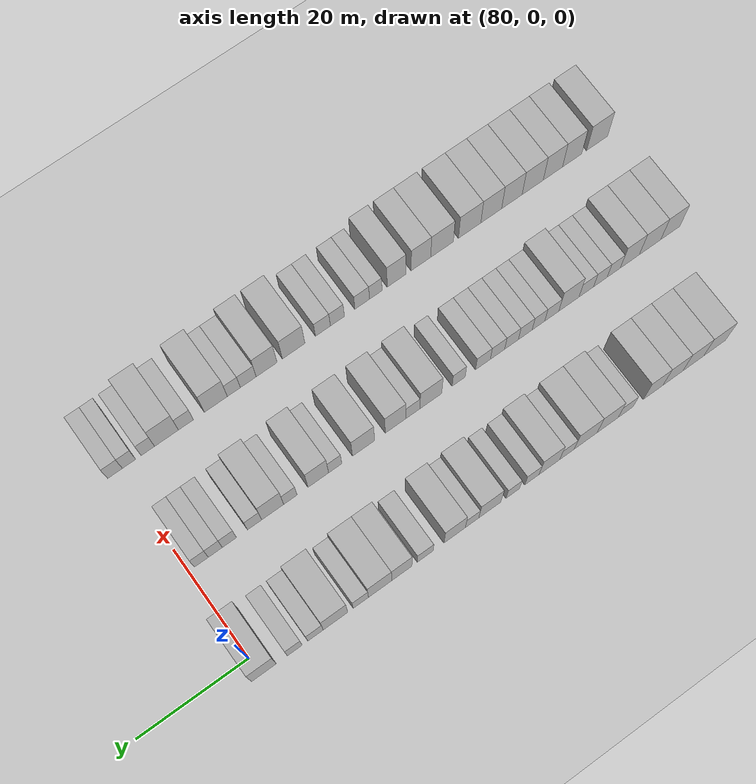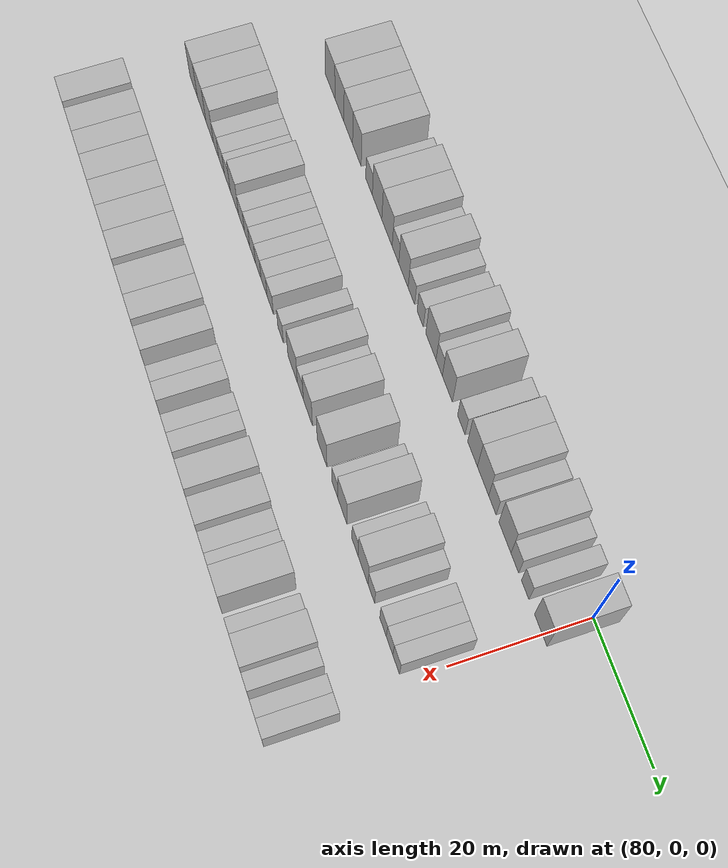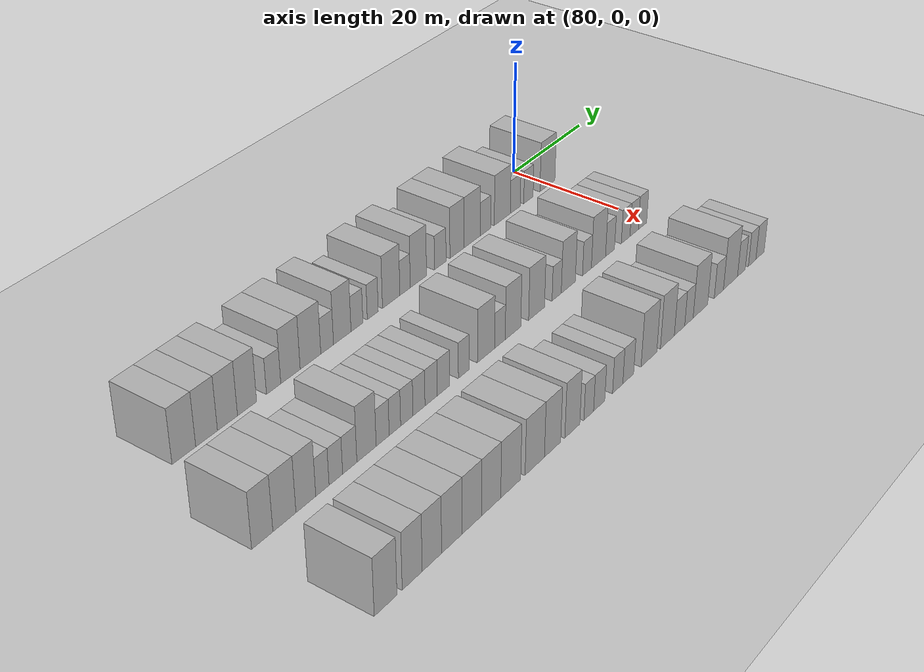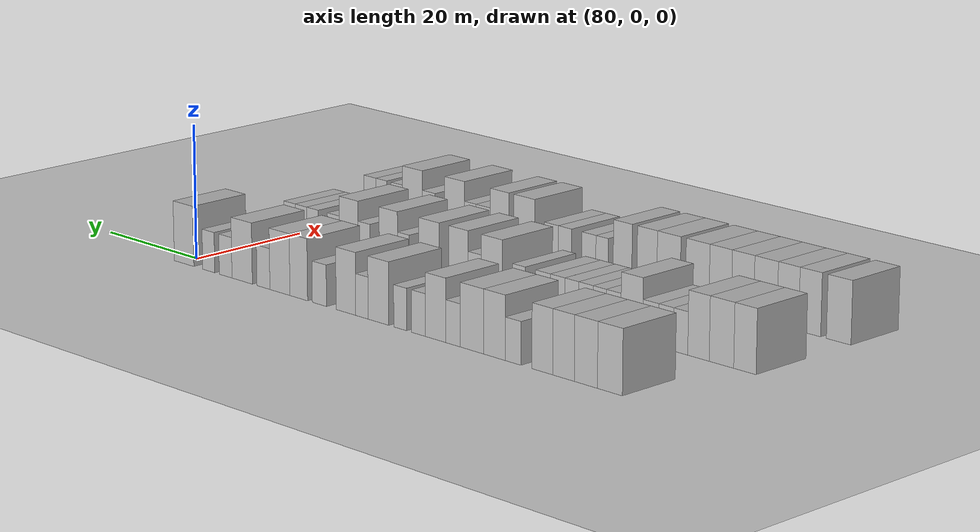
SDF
<sdf version="1.6">
 <world name="default">
  <include>
   <name>ground_plane_2</name>
   <uri>model://HANNAS_ground_plane</uri>
   <pose>100 0 0  0 0 0</pose>
  </include>
  <model name="building_573">
   <static>1</static>
   <pose>82.0000 -85.7794 0 0.000000 0.000000 0.000000</pose>
   <link name="link">
    <pose>0 0 4.50 0 0 0</pose>
    <collision name="collision"><geometry><box><size>10.0000 4.4126 9.0000</size></box></geometry></collision>
    <visual name="visual">
     <cast_shadows>0</cast_shadows>
     <geometry><box><size>10.0000 4.4126 9.0000</size></box></geometry>
     <material>
      <script>
       <uri>model://HANNAS_wall/materials/scripts</uri>
       <uri>model://HANNAS_wall/materials/textures</uri>
       <name>vrc/HANNAS_wall</name>
      </script>
     </material>
    </visual>
   </link>
  </model>
  <model name="building_574">
   <static>1</static>
   <pose>82.0000 -81.5065 0 0.000000 0.000000 0.000000</pose>
   <link name="link">
    <pose>0 0 4.50 0 0 0</pose>
    <collision name="collision"><geometry><box><size>10.0000 4.1332 9.0000</size></box></geometry></collision>
    <visual name="visual">
     <cast_shadows>0</cast_shadows>
     <geometry><box><size>10.0000 4.1332 9.0000</size></box></geometry>
     <material>
      <script>
       <uri>model://HANNAS_wall/materials/scripts</uri>
       <uri>model://HANNAS_wall/materials/textures</uri>
       <name>vrc/HANNAS_wall</name>
      </script>
     </material>
    </visual>
   </link>
  </model>
  <model name="building_575">
   <static>1</static>
   <pose>82.0000 -77.4836 0 0.000000 0.000000 0.000000</pose>
   <link name="link">
    <pose>0 0 4.50 0 0 0</pose>
    <collision name="collision"><geometry><box><size>10.0000 3.9126 9.0000</size></box></geometry></collision>
    <visual name="visual">
     <cast_shadows>0</cast_shadows>
     <geometry><box><size>10.0000 3.9126 9.0000</size></box></geometry>
     <material>
      <script>
       <uri>model://HANNAS_wall/materials/scripts</uri>
       <uri>model://HANNAS_wall/materials/textures</uri>
       <name>vrc/HANNAS_wall</name>
      </script>
     </material>
    </visual>
   </link>
  </model>
  <model name="building_576">
   <static>1</static>
   <pose>82.0000 -73.6182 0 0.000000 0.000000 0.000000</pose>
   <link name="link">
    <pose>0 0 4.50 0 0 0</pose>
    <collision name="collision"><geometry><box><size>10.0000 3.8182 9.0000</size></box></geometry></collision>
    <visual name="visual">
     <cast_shadows>0</cast_shadows>
     <geometry><box><size>10.0000 3.8182 9.0000</size></box></geometry>
     <material>
      <script>
       <uri>model://HANNAS_wall/materials/scripts</uri>
       <uri>model://HANNAS_wall/materials/textures</uri>
       <name>vrc/HANNAS_wall</name>
      </script>
     </material>
    </visual>
   </link>
  </model>
  <model name="building_577">
   <static>1</static>
   <pose>82.0000 -68.2338 0 0.000000 0.000000 0.000000</pose>
   <link name="link">
    <pose>0 0 3.00 0 0 0</pose>
    <collision name="collision"><geometry><box><size>10.0000 2.9505 6.0000</size></box></geometry></collision>
    <visual name="visual">
     <cast_shadows>0</cast_shadows>
     <geometry><box><size>10.0000 2.9505 6.0000</size></box></geometry>
     <material>
      <script>
       <uri>model://HANNAS_wall/materials/scripts</uri>
       <uri>model://HANNAS_wall/materials/textures</uri>
       <name>vrc/HANNAS_wall</name>
      </script>
     </material>
    </visual>
   </link>
  </model>
  <model name="building_578">
   <static>1</static>
   <pose>82.0000 -64.7170 0 0.000000 0.000000 0.000000</pose>
   <link name="link">
    <pose>0 0 4.50 0 0 0</pose>
    <collision name="collision"><geometry><box><size>10.0000 4.0831 9.0000</size></box></geometry></collision>
    <visual name="visual">
     <cast_shadows>0</cast_shadows>
     <geometry><box><size>10.0000 4.0831 9.0000</size></box></geometry>
     <material>
      <script>
       <uri>model://HANNAS_wall/materials/scripts</uri>
       <uri>model://HANNAS_wall/materials/textures</uri>
       <name>vrc/HANNAS_wall</name>
      </script>
     </material>
    </visual>
   </link>
  </model>
  <model name="building_579">
   <static>1</static>
   <pose>82.0000 -60.4517 0 0.000000 0.000000 0.000000</pose>
   <link name="link">
    <pose>0 0 4.50 0 0 0</pose>
    <collision name="collision"><geometry><box><size>10.0000 4.4473 9.0000</size></box></geometry></collision>
    <visual name="visual">
     <cast_shadows>0</cast_shadows>
     <geometry><box><size>10.0000 4.4473 9.0000</size></box></geometry>
     <material>
      <script>
       <uri>model://HANNAS_wall/materials/scripts</uri>
       <uri>model://HANNAS_wall/materials/textures</uri>
       <name>vrc/HANNAS_wall</name>
      </script>
     </material>
    </visual>
   </link>
  </model>
  <model name="building_580">
   <static>1</static>
   <pose>82.0000 -56.8264 0 0.000000 0.000000 0.000000</pose>
   <link name="link">
    <pose>0 0 3.00 0 0 0</pose>
    <collision name="collision"><geometry><box><size>10.0000 2.8032 6.0000</size></box></geometry></collision>
    <visual name="visual">
     <cast_shadows>0</cast_shadows>
     <geometry><box><size>10.0000 2.8032 6.0000</size></box></geometry>
     <material>
      <script>
       <uri>model://HANNAS_wall/materials/scripts</uri>
       <uri>model://HANNAS_wall/materials/textures</uri>
       <name>vrc/HANNAS_wall</name>
      </script>
     </material>
    </visual>
   </link>
  </model>
  <model name="building_581">
   <static>1</static>
   <pose>82.0000 -53.4626 0 0.000000 0.000000 0.000000</pose>
   <link name="link">
    <pose>0 0 4.50 0 0 0</pose>
    <collision name="collision"><geometry><box><size>10.0000 3.9244 9.0000</size></box></geometry></collision>
    <visual name="visual">
     <cast_shadows>0</cast_shadows>
     <geometry><box><size>10.0000 3.9244 9.0000</size></box></geometry>
     <material>
      <script>
       <uri>model://HANNAS_wall/materials/scripts</uri>
       <uri>model://HANNAS_wall/materials/textures</uri>
       <name>vrc/HANNAS_wall</name>
      </script>
     </material>
    </visual>
   </link>
  </model>
  <model name="building_582">
   <static>1</static>
   <pose>82.0000 -50.1414 0 0.000000 0.000000 0.000000</pose>
   <link name="link">
    <pose>0 0 3.00 0 0 0</pose>
    <collision name="collision"><geometry><box><size>10.0000 2.7180 6.0000</size></box></geometry></collision>
    <visual name="visual">
     <cast_shadows>0</cast_shadows>
     <geometry><box><size>10.0000 2.7180 6.0000</size></box></geometry>
     <material>
      <script>
       <uri>model://HANNAS_wall/materials/scripts</uri>
       <uri>model://HANNAS_wall/materials/textures</uri>
       <name>vrc/HANNAS_wall</name>
      </script>
     </material>
    </visual>
   </link>
  </model>
  <model name="building_583">
   <static>1</static>
   <pose>82.0000 -46.5057 0 0.000000 0.000000 0.000000</pose>
   <link name="link">
    <pose>0 0 3.00 0 0 0</pose>
    <collision name="collision"><geometry><box><size>10.0000 2.5535 6.0000</size></box></geometry></collision>
    <visual name="visual">
     <cast_shadows>0</cast_shadows>
     <geometry><box><size>10.0000 2.5535 6.0000</size></box></geometry>
     <material>
      <script>
       <uri>model://HANNAS_wall/materials/scripts</uri>
       <uri>model://HANNAS_wall/materials/textures</uri>
       <name>vrc/HANNAS_wall</name>
      </script>
     </material>
    </visual>
   </link>
  </model>
  <model name="building_584">
   <static>1</static>
   <pose>82.0000 -42.1496 0 0.000000 0.000000 0.000000</pose>
   <link name="link">
    <pose>0 0 4.50 0 0 0</pose>
    <collision name="collision"><geometry><box><size>10.0000 4.1587 9.0000</size></box></geometry></collision>
    <visual name="visual">
     <cast_shadows>0</cast_shadows>
     <geometry><box><size>10.0000 4.1587 9.0000</size></box></geometry>
     <material>
      <script>
       <uri>model://HANNAS_wall/materials/scripts</uri>
       <uri>model://HANNAS_wall/materials/textures</uri>
       <name>vrc/HANNAS_wall</name>
      </script>
     </material>
    </visual>
   </link>
  </model>
  <model name="building_585">
   <static>1</static>
   <pose>82.0000 -38.8081 0 0.000000 0.000000 0.000000</pose>
   <link name="link">
    <pose>0 0 3.00 0 0 0</pose>
    <collision name="collision"><geometry><box><size>10.0000 2.5241 6.0000</size></box></geometry></collision>
    <visual name="visual">
     <cast_shadows>0</cast_shadows>
     <geometry><box><size>10.0000 2.5241 6.0000</size></box></geometry>
     <material>
      <script>
       <uri>model://HANNAS_wall/materials/scripts</uri>
       <uri>model://HANNAS_wall/materials/textures</uri>
       <name>vrc/HANNAS_wall</name>
      </script>
     </material>
    </visual>
   </link>
  </model>
  <model name="building_586">
   <static>1</static>
   <pose>82.0000 -35.5437 0 0.000000 0.000000 0.000000</pose>
   <link name="link">
    <pose>0 0 4.50 0 0 0</pose>
    <collision name="collision"><geometry><box><size>10.0000 4.0047 9.0000</size></box></geometry></collision>
    <visual name="visual">
     <cast_shadows>0</cast_shadows>
     <geometry><box><size>10.0000 4.0047 9.0000</size></box></geometry>
     <material>
      <script>
       <uri>model://HANNAS_wall/materials/scripts</uri>
       <uri>model://HANNAS_wall/materials/textures</uri>
       <name>vrc/HANNAS_wall</name>
      </script>
     </material>
    </visual>
   </link>
  </model>
  <model name="building_587">
   <static>1</static>
   <pose>82.0000 -30.0654 0 0.000000 0.000000 0.000000</pose>
   <link name="link">
    <pose>0 0 3.00 0 0 0</pose>
    <collision name="collision"><geometry><box><size>10.0000 2.9519 6.0000</size></box></geometry></collision>
    <visual name="visual">
     <cast_shadows>0</cast_shadows>
     <geometry><box><size>10.0000 2.9519 6.0000</size></box></geometry>
     <material>
      <script>
       <uri>model://HANNAS_wall/materials/scripts</uri>
       <uri>model://HANNAS_wall/materials/textures</uri>
       <name>vrc/HANNAS_wall</name>
      </script>
     </material>
    </visual>
   </link>
  </model>
  <model name="building_588">
   <static>1</static>
   <pose>82.0000 -25.7265 0 0.000000 0.000000 0.000000</pose>
   <link name="link">
    <pose>0 0 4.50 0 0 0</pose>
    <collision name="collision"><geometry><box><size>10.0000 3.7259 9.0000</size></box></geometry></collision>
    <visual name="visual">
     <cast_shadows>0</cast_shadows>
     <geometry><box><size>10.0000 3.7259 9.0000</size></box></geometry>
     <material>
      <script>
       <uri>model://HANNAS_wall/materials/scripts</uri>
       <uri>model://HANNAS_wall/materials/textures</uri>
       <name>vrc/HANNAS_wall</name>
      </script>
     </material>
    </visual>
   </link>
  </model>
  <model name="building_589">
   <static>1</static>
   <pose>82.0000 -21.7250 0 0.000000 0.000000 0.000000</pose>
   <link name="link">
    <pose>0 0 4.50 0 0 0</pose>
    <collision name="collision"><geometry><box><size>10.0000 4.2771 9.0000</size></box></geometry></collision>
    <visual name="visual">
     <cast_shadows>0</cast_shadows>
     <geometry><box><size>10.0000 4.2771 9.0000</size></box></geometry>
     <material>
      <script>
       <uri>model://HANNAS_wall/materials/scripts</uri>
       <uri>model://HANNAS_wall/materials/textures</uri>
       <name>vrc/HANNAS_wall</name>
      </script>
     </material>
    </visual>
   </link>
  </model>
  <model name="building_590">
   <static>1</static>
   <pose>82.0000 -18.1931 0 0.000000 0.000000 0.000000</pose>
   <link name="link">
    <pose>0 0 3.00 0 0 0</pose>
    <collision name="collision"><geometry><box><size>10.0000 2.7866 6.0000</size></box></geometry></collision>
    <visual name="visual">
     <cast_shadows>0</cast_shadows>
     <geometry><box><size>10.0000 2.7866 6.0000</size></box></geometry>
     <material>
      <script>
       <uri>model://HANNAS_wall/materials/scripts</uri>
       <uri>model://HANNAS_wall/materials/textures</uri>
       <name>vrc/HANNAS_wall</name>
      </script>
     </material>
    </visual>
   </link>
  </model>
  <model name="building_591">
   <static>1</static>
   <pose>82.0000 -13.5751 0 0.000000 0.000000 0.000000</pose>
   <link name="link">
    <pose>0 0 4.50 0 0 0</pose>
    <collision name="collision"><geometry><box><size>10.0000 4.4494 9.0000</size></box></geometry></collision>
    <visual name="visual">
     <cast_shadows>0</cast_shadows>
     <geometry><box><size>10.0000 4.4494 9.0000</size></box></geometry>
     <material>
      <script>
       <uri>model://HANNAS_wall/materials/scripts</uri>
       <uri>model://HANNAS_wall/materials/textures</uri>
       <name>vrc/HANNAS_wall</name>
      </script>
     </material>
    </visual>
   </link>
  </model>
  <model name="building_592">
   <static>1</static>
   <pose>82.0000 -9.9508 0 0.000000 0.000000 0.000000</pose>
   <link name="link">
    <pose>0 0 3.00 0 0 0</pose>
    <collision name="collision"><geometry><box><size>10.0000 2.7993 6.0000</size></box></geometry></collision>
    <visual name="visual">
     <cast_shadows>0</cast_shadows>
     <geometry><box><size>10.0000 2.7993 6.0000</size></box></geometry>
     <material>
      <script>
       <uri>model://HANNAS_wall/materials/scripts</uri>
       <uri>model://HANNAS_wall/materials/textures</uri>
       <name>vrc/HANNAS_wall</name>
      </script>
     </material>
    </visual>
   </link>
  </model>
  <model name="building_593">
   <static>1</static>
   <pose>82.0000 -6.2102 0 0.000000 0.000000 0.000000</pose>
   <link name="link">
    <pose>0 0 3.00 0 0 0</pose>
    <collision name="collision"><geometry><box><size>10.0000 2.6820 6.0000</size></box></geometry></collision>
    <visual name="visual">
     <cast_shadows>0</cast_shadows>
     <geometry><box><size>10.0000 2.6820 6.0000</size></box></geometry>
     <material>
      <script>
       <uri>model://HANNAS_wall/materials/scripts</uri>
       <uri>model://HANNAS_wall/materials/textures</uri>
       <name>vrc/HANNAS_wall</name>
      </script>
     </material>
    </visual>
   </link>
  </model>
  <model name="building_594">
   <static>1</static>
   <pose>82.0000 -0.6625 0 0.000000 0.000000 0.000000</pose>
   <link name="link">
    <pose>0 0 4.50 0 0 0</pose>
    <collision name="collision"><geometry><box><size>10.0000 4.4133 9.0000</size></box></geometry></collision>
    <visual name="visual">
     <cast_shadows>0</cast_shadows>
     <geometry><box><size>10.0000 4.4133 9.0000</size></box></geometry>
     <material>
      <script>
       <uri>model://HANNAS_wall/materials/scripts</uri>
       <uri>model://HANNAS_wall/materials/textures</uri>
       <name>vrc/HANNAS_wall</name>
      </script>
     </material>
    </visual>
   </link>
  </model>
  <model name="building_738">
   <static>1</static>
   <pose>101.0000 -92.0588 0 0.000000 0.000000 0.000000</pose>
   <link name="link">
    <pose>0 0 4.50 0 0 0</pose>
    <collision name="collision"><geometry><box><size>10.0000 3.8832 9.0000</size></box></geometry></collision>
    <visual name="visual">
     <cast_shadows>0</cast_shadows>
     <geometry><box><size>10.0000 3.8832 9.0000</size></box></geometry>
     <material>
      <script>
       <uri>model://HANNAS_wall/materials/scripts</uri>
       <uri>model://HANNAS_wall/materials/textures</uri>
       <name>vrc/HANNAS_wall</name>
      </script>
     </material>
    </visual>
   </link>
  </model>
  <model name="building_739">
   <static>1</static>
   <pose>101.0000 -87.9617 0 0.000000 0.000000 0.000000</pose>
   <link name="link">
    <pose>0 0 4.50 0 0 0</pose>
    <collision name="collision"><geometry><box><size>10.0000 4.3111 9.0000</size></box></geometry></collision>
    <visual name="visual">
     <cast_shadows>0</cast_shadows>
     <geometry><box><size>10.0000 4.3111 9.0000</size></box></geometry>
     <material>
      <script>
       <uri>model://HANNAS_wall/materials/scripts</uri>
       <uri>model://HANNAS_wall/materials/textures</uri>
       <name>vrc/HANNAS_wall</name>
      </script>
     </material>
    </visual>
   </link>
  </model>
  <model name="building_740">
   <static>1</static>
   <pose>101.0000 -83.9002 0 0.000000 0.000000 0.000000</pose>
   <link name="link">
    <pose>0 0 4.50 0 0 0</pose>
    <collision name="collision"><geometry><box><size>10.0000 3.8120 9.0000</size></box></geometry></collision>
    <visual name="visual">
     <cast_shadows>0</cast_shadows>
     <geometry><box><size>10.0000 3.8120 9.0000</size></box></geometry>
     <material>
      <script>
       <uri>model://HANNAS_wall/materials/scripts</uri>
       <uri>model://HANNAS_wall/materials/textures</uri>
       <name>vrc/HANNAS_wall</name>
      </script>
     </material>
    </visual>
   </link>
  </model>
  <model name="building_741">
   <static>1</static>
   <pose>101.0000 -80.6893 0 0.000000 0.000000 0.000000</pose>
   <link name="link">
    <pose>0 0 3.00 0 0 0</pose>
    <collision name="collision"><geometry><box><size>10.0000 2.6096 6.0000</size></box></geometry></collision>
    <visual name="visual">
     <cast_shadows>0</cast_shadows>
     <geometry><box><size>10.0000 2.6096 6.0000</size></box></geometry>
     <material>
      <script>
       <uri>model://HANNAS_wall/materials/scripts</uri>
       <uri>model://HANNAS_wall/materials/textures</uri>
       <name>vrc/HANNAS_wall</name>
      </script>
     </material>
    </visual>
   </link>
  </model>
  <model name="building_742">
   <static>1</static>
   <pose>101.0000 -78.0267 0 0.000000 0.000000 0.000000</pose>
   <link name="link">
    <pose>0 0 3.00 0 0 0</pose>
    <collision name="collision"><geometry><box><size>10.0000 2.7157 6.0000</size></box></geometry></collision>
    <visual name="visual">
     <cast_shadows>0</cast_shadows>
     <geometry><box><size>10.0000 2.7157 6.0000</size></box></geometry>
     <material>
      <script>
       <uri>model://HANNAS_wall/materials/scripts</uri>
       <uri>model://HANNAS_wall/materials/textures</uri>
       <name>vrc/HANNAS_wall</name>
      </script>
     </material>
    </visual>
   </link>
  </model>
  <model name="building_743">
   <static>1</static>
   <pose>101.0000 -75.2263 0 0.000000 0.000000 0.000000</pose>
   <link name="link">
    <pose>0 0 3.00 0 0 0</pose>
    <collision name="collision"><geometry><box><size>10.0000 2.8850 6.0000</size></box></geometry></collision>
    <visual name="visual">
     <cast_shadows>0</cast_shadows>
     <geometry><box><size>10.0000 2.8850 6.0000</size></box></geometry>
     <material>
      <script>
       <uri>model://HANNAS_wall/materials/scripts</uri>
       <uri>model://HANNAS_wall/materials/textures</uri>
       <name>vrc/HANNAS_wall</name>
      </script>
     </material>
    </visual>
   </link>
  </model>
  <model name="building_744">
   <static>1</static>
   <pose>101.0000 -71.7849 0 0.000000 0.000000 0.000000</pose>
   <link name="link">
    <pose>0 0 4.50 0 0 0</pose>
    <collision name="collision"><geometry><box><size>10.0000 3.9979 9.0000</size></box></geometry></collision>
    <visual name="visual">
     <cast_shadows>0</cast_shadows>
     <geometry><box><size>10.0000 3.9979 9.0000</size></box></geometry>
     <material>
      <script>
       <uri>model://HANNAS_wall/materials/scripts</uri>
       <uri>model://HANNAS_wall/materials/textures</uri>
       <name>vrc/HANNAS_wall</name>
      </script>
     </material>
    </visual>
   </link>
  </model>
  <model name="building_745">
   <static>1</static>
   <pose>101.0000 -68.4042 0 0.000000 0.000000 0.000000</pose>
   <link name="link">
    <pose>0 0 3.00 0 0 0</pose>
    <collision name="collision"><geometry><box><size>10.0000 2.7634 6.0000</size></box></geometry></collision>
    <visual name="visual">
     <cast_shadows>0</cast_shadows>
     <geometry><box><size>10.0000 2.7634 6.0000</size></box></geometry>
     <material>
      <script>
       <uri>model://HANNAS_wall/materials/scripts</uri>
       <uri>model://HANNAS_wall/materials/textures</uri>
       <name>vrc/HANNAS_wall</name>
      </script>
     </material>
    </visual>
   </link>
  </model>
  <model name="building_746">
   <static>1</static>
   <pose>101.0000 -65.7893 0 0.000000 0.000000 0.000000</pose>
   <link name="link">
    <pose>0 0 3.00 0 0 0</pose>
    <collision name="collision"><geometry><box><size>10.0000 2.4665 6.0000</size></box></geometry></collision>
    <visual name="visual">
     <cast_shadows>0</cast_shadows>
     <geometry><box><size>10.0000 2.4665 6.0000</size></box></geometry>
     <material>
      <script>
       <uri>model://HANNAS_wall/materials/scripts</uri>
       <uri>model://HANNAS_wall/materials/textures</uri>
       <name>vrc/HANNAS_wall</name>
      </script>
     </material>
    </visual>
   </link>
  </model>
  <model name="building_747">
   <static>1</static>
   <pose>101.0000 -63.2087 0 0.000000 0.000000 0.000000</pose>
   <link name="link">
    <pose>0 0 3.00 0 0 0</pose>
    <collision name="collision"><geometry><box><size>10.0000 2.6945 6.0000</size></box></geometry></collision>
    <visual name="visual">
     <cast_shadows>0</cast_shadows>
     <geometry><box><size>10.0000 2.6945 6.0000</size></box></geometry>
     <material>
      <script>
       <uri>model://HANNAS_wall/materials/scripts</uri>
       <uri>model://HANNAS_wall/materials/textures</uri>
       <name>vrc/HANNAS_wall</name>
      </script>
     </material>
    </visual>
   </link>
  </model>
  <model name="building_748">
   <static>1</static>
   <pose>101.0000 -60.5355 0 0.000000 0.000000 0.000000</pose>
   <link name="link">
    <pose>0 0 3.00 0 0 0</pose>
    <collision name="collision"><geometry><box><size>10.0000 2.6519 6.0000</size></box></geometry></collision>
    <visual name="visual">
     <cast_shadows>0</cast_shadows>
     <geometry><box><size>10.0000 2.6519 6.0000</size></box></geometry>
     <material>
      <script>
       <uri>model://HANNAS_wall/materials/scripts</uri>
       <uri>model://HANNAS_wall/materials/textures</uri>
       <name>vrc/HANNAS_wall</name>
      </script>
     </material>
    </visual>
   </link>
  </model>
  <model name="building_749">
   <static>1</static>
   <pose>101.0000 -57.8195 0 0.000000 0.000000 0.000000</pose>
   <link name="link">
    <pose>0 0 3.00 0 0 0</pose>
    <collision name="collision"><geometry><box><size>10.0000 2.7802 6.0000</size></box></geometry></collision>
    <visual name="visual">
     <cast_shadows>0</cast_shadows>
     <geometry><box><size>10.0000 2.7802 6.0000</size></box></geometry>
     <material>
      <script>
       <uri>model://HANNAS_wall/materials/scripts</uri>
       <uri>model://HANNAS_wall/materials/textures</uri>
       <name>vrc/HANNAS_wall</name>
      </script>
     </material>
    </visual>
   </link>
  </model>
  <model name="building_750">
   <static>1</static>
   <pose>101.0000 -54.9989 0 0.000000 0.000000 0.000000</pose>
   <link name="link">
    <pose>0 0 3.00 0 0 0</pose>
    <collision name="collision"><geometry><box><size>10.0000 2.8609 6.0000</size></box></geometry></collision>
    <visual name="visual">
     <cast_shadows>0</cast_shadows>
     <geometry><box><size>10.0000 2.8609 6.0000</size></box></geometry>
     <material>
      <script>
       <uri>model://HANNAS_wall/materials/scripts</uri>
       <uri>model://HANNAS_wall/materials/textures</uri>
       <name>vrc/HANNAS_wall</name>
      </script>
     </material>
    </visual>
   </link>
  </model>
  <model name="building_751">
   <static>1</static>
   <pose>101.0000 -50.3136 0 0.000000 0.000000 0.000000</pose>
   <link name="link">
    <pose>0 0 3.00 0 0 0</pose>
    <collision name="collision"><geometry><box><size>10.0000 2.5095 6.0000</size></box></geometry></collision>
    <visual name="visual">
     <cast_shadows>0</cast_shadows>
     <geometry><box><size>10.0000 2.5095 6.0000</size></box></geometry>
     <material>
      <script>
       <uri>model://HANNAS_wall/materials/scripts</uri>
       <uri>model://HANNAS_wall/materials/textures</uri>
       <name>vrc/HANNAS_wall</name>
      </script>
     </material>
    </visual>
   </link>
  </model>
  <model name="building_752">
   <static>1</static>
   <pose>101.0000 -44.9735 0 0.000000 0.000000 0.000000</pose>
   <link name="link">
    <pose>0 0 4.50 0 0 0</pose>
    <collision name="collision"><geometry><box><size>10.0000 4.1707 9.0000</size></box></geometry></collision>
    <visual name="visual">
     <cast_shadows>0</cast_shadows>
     <geometry><box><size>10.0000 4.1707 9.0000</size></box></geometry>
     <material>
      <script>
       <uri>model://HANNAS_wall/materials/scripts</uri>
       <uri>model://HANNAS_wall/materials/textures</uri>
       <name>vrc/HANNAS_wall</name>
      </script>
     </material>
    </visual>
   </link>
  </model>
  <model name="building_753">
   <static>1</static>
   <pose>101.0000 -41.5699 0 0.000000 0.000000 0.000000</pose>
   <link name="link">
    <pose>0 0 3.00 0 0 0</pose>
    <collision name="collision"><geometry><box><size>10.0000 2.6365 6.0000</size></box></geometry></collision>
    <visual name="visual">
     <cast_shadows>0</cast_shadows>
     <geometry><box><size>10.0000 2.6365 6.0000</size></box></geometry>
     <material>
      <script>
       <uri>model://HANNAS_wall/materials/scripts</uri>
       <uri>model://HANNAS_wall/materials/textures</uri>
       <name>vrc/HANNAS_wall</name>
      </script>
     </material>
    </visual>
   </link>
  </model>
  <model name="building_754">
   <static>1</static>
   <pose>101.0000 -38.2896 0 0.000000 0.000000 0.000000</pose>
   <link name="link">
    <pose>0 0 4.50 0 0 0</pose>
    <collision name="collision"><geometry><box><size>10.0000 3.9241 9.0000</size></box></geometry></collision>
    <visual name="visual">
     <cast_shadows>0</cast_shadows>
     <geometry><box><size>10.0000 3.9241 9.0000</size></box></geometry>
     <material>
      <script>
       <uri>model://HANNAS_wall/materials/scripts</uri>
       <uri>model://HANNAS_wall/materials/textures</uri>
       <name>vrc/HANNAS_wall</name>
      </script>
     </material>
    </visual>
   </link>
  </model>
  <model name="building_755">
   <static>1</static>
   <pose>101.0000 -32.2507 0 0.000000 0.000000 0.000000</pose>
   <link name="link">
    <pose>0 0 4.50 0 0 0</pose>
    <collision name="collision"><geometry><box><size>10.0000 4.1537 9.0000</size></box></geometry></collision>
    <visual name="visual">
     <cast_shadows>0</cast_shadows>
     <geometry><box><size>10.0000 4.1537 9.0000</size></box></geometry>
     <material>
      <script>
       <uri>model://HANNAS_wall/materials/scripts</uri>
       <uri>model://HANNAS_wall/materials/textures</uri>
       <name>vrc/HANNAS_wall</name>
      </script>
     </material>
    </visual>
   </link>
  </model>
  <model name="building_756">
   <static>1</static>
   <pose>101.0000 -26.9416 0 0.000000 0.000000 0.000000</pose>
   <link name="link">
    <pose>0 0 3.00 0 0 0</pose>
    <collision name="collision"><geometry><box><size>10.0000 2.4647 6.0000</size></box></geometry></collision>
    <visual name="visual">
     <cast_shadows>0</cast_shadows>
     <geometry><box><size>10.0000 2.4647 6.0000</size></box></geometry>
     <material>
      <script>
       <uri>model://HANNAS_wall/materials/scripts</uri>
       <uri>model://HANNAS_wall/materials/textures</uri>
       <name>vrc/HANNAS_wall</name>
      </script>
     </material>
    </visual>
   </link>
  </model>
  <model name="building_757">
   <static>1</static>
   <pose>101.0000 -23.7901 0 0.000000 0.000000 0.000000</pose>
   <link name="link">
    <pose>0 0 4.50 0 0 0</pose>
    <collision name="collision"><geometry><box><size>10.0000 3.8382 9.0000</size></box></geometry></collision>
    <visual name="visual">
     <cast_shadows>0</cast_shadows>
     <geometry><box><size>10.0000 3.8382 9.0000</size></box></geometry>
     <material>
      <script>
       <uri>model://HANNAS_wall/materials/scripts</uri>
       <uri>model://HANNAS_wall/materials/textures</uri>
       <name>vrc/HANNAS_wall</name>
      </script>
     </material>
    </visual>
   </link>
  </model>
  <model name="building_758">
   <static>1</static>
   <pose>101.0000 -18.6231 0 0.000000 0.000000 0.000000</pose>
   <link name="link">
    <pose>0 0 3.00 0 0 0</pose>
    <collision name="collision"><geometry><box><size>10.0000 2.4959 6.0000</size></box></geometry></collision>
    <visual name="visual">
     <cast_shadows>0</cast_shadows>
     <geometry><box><size>10.0000 2.4959 6.0000</size></box></geometry>
     <material>
      <script>
       <uri>model://HANNAS_wall/materials/scripts</uri>
       <uri>model://HANNAS_wall/materials/textures</uri>
       <name>vrc/HANNAS_wall</name>
      </script>
     </material>
    </visual>
   </link>
  </model>
  <model name="building_759">
   <static>1</static>
   <pose>101.0000 -15.3541 0 0.000000 0.000000 0.000000</pose>
   <link name="link">
    <pose>0 0 4.50 0 0 0</pose>
    <collision name="collision"><geometry><box><size>10.0000 4.0420 9.0000</size></box></geometry></collision>
    <visual name="visual">
     <cast_shadows>0</cast_shadows>
     <geometry><box><size>10.0000 4.0420 9.0000</size></box></geometry>
     <material>
      <script>
       <uri>model://HANNAS_wall/materials/scripts</uri>
       <uri>model://HANNAS_wall/materials/textures</uri>
       <name>vrc/HANNAS_wall</name>
      </script>
     </material>
    </visual>
   </link>
  </model>
  <model name="building_760">
   <static>1</static>
   <pose>101.0000 -12.0294 0 0.000000 0.000000 0.000000</pose>
   <link name="link">
    <pose>0 0 3.00 0 0 0</pose>
    <collision name="collision"><geometry><box><size>10.0000 2.6074 6.0000</size></box></geometry></collision>
    <visual name="visual">
     <cast_shadows>0</cast_shadows>
     <geometry><box><size>10.0000 2.6074 6.0000</size></box></geometry>
     <material>
      <script>
       <uri>model://HANNAS_wall/materials/scripts</uri>
       <uri>model://HANNAS_wall/materials/textures</uri>
       <name>vrc/HANNAS_wall</name>
      </script>
     </material>
    </visual>
   </link>
  </model>
  <model name="building_761">
   <static>1</static>
   <pose>101.0000 -7.4411 0 0.000000 0.000000 0.000000</pose>
   <link name="link">
    <pose>0 0 3.00 0 0 0</pose>
    <collision name="collision"><geometry><box><size>10.0000 2.5691 6.0000</size></box></geometry></collision>
    <visual name="visual">
     <cast_shadows>0</cast_shadows>
     <geometry><box><size>10.0000 2.5691 6.0000</size></box></geometry>
     <material>
      <script>
       <uri>model://HANNAS_wall/materials/scripts</uri>
       <uri>model://HANNAS_wall/materials/textures</uri>
       <name>vrc/HANNAS_wall</name>
      </script>
     </material>
    </visual>
   </link>
  </model>
  <model name="building_762">
   <static>1</static>
   <pose>101.0000 -4.8880 0 0.000000 0.000000 0.000000</pose>
   <link name="link">
    <pose>0 0 3.00 0 0 0</pose>
    <collision name="collision"><geometry><box><size>10.0000 2.5371 6.0000</size></box></geometry></collision>
    <visual name="visual">
     <cast_shadows>0</cast_shadows>
     <geometry><box><size>10.0000 2.5371 6.0000</size></box></geometry>
     <material>
      <script>
       <uri>model://HANNAS_wall/materials/scripts</uri>
       <uri>model://HANNAS_wall/materials/textures</uri>
       <name>vrc/HANNAS_wall</name>
      </script>
     </material>
    </visual>
   </link>
  </model>
  <model name="building_763">
   <static>1</static>
   <pose>101.0000 -2.3564 0 0.000000 0.000000 0.000000</pose>
   <link name="link">
    <pose>0 0 3.00 0 0 0</pose>
    <collision name="collision"><geometry><box><size>10.0000 2.5261 6.0000</size></box></geometry></collision>
    <visual name="visual">
     <cast_shadows>0</cast_shadows>
     <geometry><box><size>10.0000 2.5261 6.0000</size></box></geometry>
     <material>
      <script>
       <uri>model://HANNAS_wall/materials/scripts</uri>
       <uri>model://HANNAS_wall/materials/textures</uri>
       <name>vrc/HANNAS_wall</name>
      </script>
     </material>
    </visual>
   </link>
  </model>
  <model name="building_903">
   <static>1</static>
   <pose>120.0000 -92.0881 0 0.000000 0.000000 0.000000</pose>
   <link name="link">
    <pose>0 0 4.50 0 0 0</pose>
    <collision name="collision"><geometry><box><size>10.0000 4.2838 9.0000</size></box></geometry></collision>
    <visual name="visual">
     <cast_shadows>0</cast_shadows>
     <geometry><box><size>10.0000 4.2838 9.0000</size></box></geometry>
     <material>
      <script>
       <uri>model://HANNAS_wall/materials/scripts</uri>
       <uri>model://HANNAS_wall/materials/textures</uri>
       <name>vrc/HANNAS_wall</name>
      </script>
     </material>
    </visual>
   </link>
  </model>
  <model name="building_904">
   <static>1</static>
   <pose>120.0000 -86.9994 0 0.000000 0.000000 0.000000</pose>
   <link name="link">
    <pose>0 0 4.50 0 0 0</pose>
    <collision name="collision"><geometry><box><size>10.0000 3.8937 9.0000</size></box></geometry></collision>
    <visual name="visual">
     <cast_shadows>0</cast_shadows>
     <geometry><box><size>10.0000 3.8937 9.0000</size></box></geometry>
     <material>
      <script>
       <uri>model://HANNAS_wall/materials/scripts</uri>
       <uri>model://HANNAS_wall/materials/textures</uri>
       <name>vrc/HANNAS_wall</name>
      </script>
     </material>
    </visual>
   </link>
  </model>
  <model name="building_905">
   <static>1</static>
   <pose>120.0000 -83.1184 0 0.000000 0.000000 0.000000</pose>
   <link name="link">
    <pose>0 0 4.50 0 0 0</pose>
    <collision name="collision"><geometry><box><size>10.0000 3.8683 9.0000</size></box></geometry></collision>
    <visual name="visual">
     <cast_shadows>0</cast_shadows>
     <geometry><box><size>10.0000 3.8683 9.0000</size></box></geometry>
     <material>
      <script>
       <uri>model://HANNAS_wall/materials/scripts</uri>
       <uri>model://HANNAS_wall/materials/textures</uri>
       <name>vrc/HANNAS_wall</name>
      </script>
     </material>
    </visual>
   </link>
  </model>
  <model name="building_906">
   <static>1</static>
   <pose>120.0000 -79.0658 0 0.000000 0.000000 0.000000</pose>
   <link name="link">
    <pose>0 0 4.50 0 0 0</pose>
    <collision name="collision"><geometry><box><size>10.0000 4.2370 9.0000</size></box></geometry></collision>
    <visual name="visual">
     <cast_shadows>0</cast_shadows>
     <geometry><box><size>10.0000 4.2370 9.0000</size></box></geometry>
     <material>
      <script>
       <uri>model://HANNAS_wall/materials/scripts</uri>
       <uri>model://HANNAS_wall/materials/textures</uri>
       <name>vrc/HANNAS_wall</name>
      </script>
     </material>
    </visual>
   </link>
  </model>
  <model name="building_907">
   <static>1</static>
   <pose>120.0000 -74.9034 0 0.000000 0.000000 0.000000</pose>
   <link name="link">
    <pose>0 0 4.50 0 0 0</pose>
    <collision name="collision"><geometry><box><size>10.0000 4.0879 9.0000</size></box></geometry></collision>
    <visual name="visual">
     <cast_shadows>0</cast_shadows>
     <geometry><box><size>10.0000 4.0879 9.0000</size></box></geometry>
     <material>
      <script>
       <uri>model://HANNAS_wall/materials/scripts</uri>
       <uri>model://HANNAS_wall/materials/textures</uri>
       <name>vrc/HANNAS_wall</name>
      </script>
     </material>
    </visual>
   </link>
  </model>
  <model name="building_908">
   <static>1</static>
   <pose>120.0000 -70.7888 0 0.000000 0.000000 0.000000</pose>
   <link name="link">
    <pose>0 0 4.50 0 0 0</pose>
    <collision name="collision"><geometry><box><size>10.0000 4.1414 9.0000</size></box></geometry></collision>
    <visual name="visual">
     <cast_shadows>0</cast_shadows>
     <geometry><box><size>10.0000 4.1414 9.0000</size></box></geometry>
     <material>
      <script>
       <uri>model://HANNAS_wall/materials/scripts</uri>
       <uri>model://HANNAS_wall/materials/textures</uri>
       <name>vrc/HANNAS_wall</name>
      </script>
     </material>
    </visual>
   </link>
  </model>
  <model name="building_909">
   <static>1</static>
   <pose>120.0000 -66.5064 0 0.000000 0.000000 0.000000</pose>
   <link name="link">
    <pose>0 0 4.50 0 0 0</pose>
    <collision name="collision"><geometry><box><size>10.0000 4.4234 9.0000</size></box></geometry></collision>
    <visual name="visual">
     <cast_shadows>0</cast_shadows>
     <geometry><box><size>10.0000 4.4234 9.0000</size></box></geometry>
     <material>
      <script>
       <uri>model://HANNAS_wall/materials/scripts</uri>
       <uri>model://HANNAS_wall/materials/textures</uri>
       <name>vrc/HANNAS_wall</name>
      </script>
     </material>
    </visual>
   </link>
  </model>
  <model name="building_910">
   <static>1</static>
   <pose>120.0000 -61.0678 0 0.000000 0.000000 0.000000</pose>
   <link name="link">
    <pose>0 0 4.50 0 0 0</pose>
    <collision name="collision"><geometry><box><size>10.0000 4.4537 9.0000</size></box></geometry></collision>
    <visual name="visual">
     <cast_shadows>0</cast_shadows>
     <geometry><box><size>10.0000 4.4537 9.0000</size></box></geometry>
     <material>
      <script>
       <uri>model://HANNAS_wall/materials/scripts</uri>
       <uri>model://HANNAS_wall/materials/textures</uri>
       <name>vrc/HANNAS_wall</name>
      </script>
     </material>
    </visual>
   </link>
  </model>
  <model name="building_911">
   <static>1</static>
   <pose>120.0000 -56.9256 0 0.000000 0.000000 0.000000</pose>
   <link name="link">
    <pose>0 0 4.50 0 0 0</pose>
    <collision name="collision"><geometry><box><size>10.0000 3.8307 9.0000</size></box></geometry></collision>
    <visual name="visual">
     <cast_shadows>0</cast_shadows>
     <geometry><box><size>10.0000 3.8307 9.0000</size></box></geometry>
     <material>
      <script>
       <uri>model://HANNAS_wall/materials/scripts</uri>
       <uri>model://HANNAS_wall/materials/textures</uri>
       <name>vrc/HANNAS_wall</name>
      </script>
     </material>
    </visual>
   </link>
  </model>
  <model name="building_912">
   <static>1</static>
   <pose>120.0000 -52.1881 0 0.000000 0.000000 0.000000</pose>
   <link name="link">
    <pose>0 0 4.50 0 0 0</pose>
    <collision name="collision"><geometry><box><size>10.0000 3.6443 9.0000</size></box></geometry></collision>
    <visual name="visual">
     <cast_shadows>0</cast_shadows>
     <geometry><box><size>10.0000 3.6443 9.0000</size></box></geometry>
     <material>
      <script>
       <uri>model://HANNAS_wall/materials/scripts</uri>
       <uri>model://HANNAS_wall/materials/textures</uri>
       <name>vrc/HANNAS_wall</name>
      </script>
     </material>
    </visual>
   </link>
  </model>
  <model name="building_913">
   <static>1</static>
   <pose>120.0000 -48.1525 0 0.000000 0.000000 0.000000</pose>
   <link name="link">
    <pose>0 0 3.00 0 0 0</pose>
    <collision name="collision"><geometry><box><size>10.0000 2.4269 6.0000</size></box></geometry></collision>
    <visual name="visual">
     <cast_shadows>0</cast_shadows>
     <geometry><box><size>10.0000 2.4269 6.0000</size></box></geometry>
     <material>
      <script>
       <uri>model://HANNAS_wall/materials/scripts</uri>
       <uri>model://HANNAS_wall/materials/textures</uri>
       <name>vrc/HANNAS_wall</name>
      </script>
     </material>
    </visual>
   </link>
  </model>
  <model name="building_914">
   <static>1</static>
   <pose>120.0000 -45.5315 0 0.000000 0.000000 0.000000</pose>
   <link name="link">
    <pose>0 0 3.00 0 0 0</pose>
    <collision name="collision"><geometry><box><size>10.0000 2.8152 6.0000</size></box></geometry></collision>
    <visual name="visual">
     <cast_shadows>0</cast_shadows>
     <geometry><box><size>10.0000 2.8152 6.0000</size></box></geometry>
     <material>
      <script>
       <uri>model://HANNAS_wall/materials/scripts</uri>
       <uri>model://HANNAS_wall/materials/textures</uri>
       <name>vrc/HANNAS_wall</name>
      </script>
     </material>
    </visual>
   </link>
  </model>
  <model name="building_915">
   <static>1</static>
   <pose>120.0000 -40.7878 0 0.000000 0.000000 0.000000</pose>
   <link name="link">
    <pose>0 0 3.00 0 0 0</pose>
    <collision name="collision"><geometry><box><size>10.0000 2.6722 6.0000</size></box></geometry></collision>
    <visual name="visual">
     <cast_shadows>0</cast_shadows>
     <geometry><box><size>10.0000 2.6722 6.0000</size></box></geometry>
     <material>
      <script>
       <uri>model://HANNAS_wall/materials/scripts</uri>
       <uri>model://HANNAS_wall/materials/textures</uri>
       <name>vrc/HANNAS_wall</name>
      </script>
     </material>
    </visual>
   </link>
  </model>
  <model name="building_916">
   <static>1</static>
   <pose>120.0000 -38.0216 0 0.000000 0.000000 0.000000</pose>
   <link name="link">
    <pose>0 0 3.00 0 0 0</pose>
    <collision name="collision"><geometry><box><size>10.0000 2.8601 6.0000</size></box></geometry></collision>
    <visual name="visual">
     <cast_shadows>0</cast_shadows>
     <geometry><box><size>10.0000 2.8601 6.0000</size></box></geometry>
     <material>
      <script>
       <uri>model://HANNAS_wall/materials/scripts</uri>
       <uri>model://HANNAS_wall/materials/textures</uri>
       <name>vrc/HANNAS_wall</name>
      </script>
     </material>
    </visual>
   </link>
  </model>
  <model name="building_917">
   <static>1</static>
   <pose>120.0000 -32.4534 0 0.000000 0.000000 0.000000</pose>
   <link name="link">
    <pose>0 0 4.50 0 0 0</pose>
    <collision name="collision"><geometry><box><size>10.0000 4.2764 9.0000</size></box></geometry></collision>
    <visual name="visual">
     <cast_shadows>0</cast_shadows>
     <geometry><box><size>10.0000 4.2764 9.0000</size></box></geometry>
     <material>
      <script>
       <uri>model://HANNAS_wall/materials/scripts</uri>
       <uri>model://HANNAS_wall/materials/textures</uri>
       <name>vrc/HANNAS_wall</name>
      </script>
     </material>
    </visual>
   </link>
  </model>
  <model name="building_918">
   <static>1</static>
   <pose>120.0000 -27.3529 0 0.000000 0.000000 0.000000</pose>
   <link name="link">
    <pose>0 0 4.50 0 0 0</pose>
    <collision name="collision"><geometry><box><size>10.0000 3.9245 9.0000</size></box></geometry></collision>
    <visual name="visual">
     <cast_shadows>0</cast_shadows>
     <geometry><box><size>10.0000 3.9245 9.0000</size></box></geometry>
     <material>
      <script>
       <uri>model://HANNAS_wall/materials/scripts</uri>
       <uri>model://HANNAS_wall/materials/textures</uri>
       <name>vrc/HANNAS_wall</name>
      </script>
     </material>
    </visual>
   </link>
  </model>
  <model name="building_919">
   <static>1</static>
   <pose>120.0000 -23.9048 0 0.000000 0.000000 0.000000</pose>
   <link name="link">
    <pose>0 0 3.00 0 0 0</pose>
    <collision name="collision"><geometry><box><size>10.0000 2.9719 6.0000</size></box></geometry></collision>
    <visual name="visual">
     <cast_shadows>0</cast_shadows>
     <geometry><box><size>10.0000 2.9719 6.0000</size></box></geometry>
     <material>
      <script>
       <uri>model://HANNAS_wall/materials/scripts</uri>
       <uri>model://HANNAS_wall/materials/textures</uri>
       <name>vrc/HANNAS_wall</name>
      </script>
     </material>
    </visual>
   </link>
  </model>
  <model name="building_920">
   <static>1</static>
   <pose>120.0000 -21.1981 0 0.000000 0.000000 0.000000</pose>
   <link name="link">
    <pose>0 0 3.00 0 0 0</pose>
    <collision name="collision"><geometry><box><size>10.0000 2.4415 6.0000</size></box></geometry></collision>
    <visual name="visual">
     <cast_shadows>0</cast_shadows>
     <geometry><box><size>10.0000 2.4415 6.0000</size></box></geometry>
     <material>
      <script>
       <uri>model://HANNAS_wall/materials/scripts</uri>
       <uri>model://HANNAS_wall/materials/textures</uri>
       <name>vrc/HANNAS_wall</name>
      </script>
     </material>
    </visual>
   </link>
  </model>
  <model name="building_921">
   <static>1</static>
   <pose>120.0000 -17.8341 0 0.000000 0.000000 0.000000</pose>
   <link name="link">
    <pose>0 0 4.50 0 0 0</pose>
    <collision name="collision"><geometry><box><size>10.0000 4.2865 9.0000</size></box></geometry></collision>
    <visual name="visual">
     <cast_shadows>0</cast_shadows>
     <geometry><box><size>10.0000 4.2865 9.0000</size></box></geometry>
     <material>
      <script>
       <uri>model://HANNAS_wall/materials/scripts</uri>
       <uri>model://HANNAS_wall/materials/textures</uri>
       <name>vrc/HANNAS_wall</name>
      </script>
     </material>
    </visual>
   </link>
  </model>
  <model name="building_922">
   <static>1</static>
   <pose>120.0000 -12.2912 0 0.000000 0.000000 0.000000</pose>
   <link name="link">
    <pose>0 0 3.00 0 0 0</pose>
    <collision name="collision"><geometry><box><size>10.0000 2.7993 6.0000</size></box></geometry></collision>
    <visual name="visual">
     <cast_shadows>0</cast_shadows>
     <geometry><box><size>10.0000 2.7993 6.0000</size></box></geometry>
     <material>
      <script>
       <uri>model://HANNAS_wall/materials/scripts</uri>
       <uri>model://HANNAS_wall/materials/textures</uri>
       <name>vrc/HANNAS_wall</name>
      </script>
     </material>
    </visual>
   </link>
  </model>
  <model name="building_923">
   <static>1</static>
   <pose>120.0000 -8.7033 0 0.000000 0.000000 0.000000</pose>
   <link name="link">
    <pose>0 0 4.50 0 0 0</pose>
    <collision name="collision"><geometry><box><size>10.0000 4.3765 9.0000</size></box></geometry></collision>
    <visual name="visual">
     <cast_shadows>0</cast_shadows>
     <geometry><box><size>10.0000 4.3765 9.0000</size></box></geometry>
     <material>
      <script>
       <uri>model://HANNAS_wall/materials/scripts</uri>
       <uri>model://HANNAS_wall/materials/textures</uri>
       <name>vrc/HANNAS_wall</name>
      </script>
     </material>
    </visual>
   </link>
  </model>
  <model name="building_924">
   <static>1</static>
   <pose>120.0000 -5.2864 0 0.000000 0.000000 0.000000</pose>
   <link name="link">
    <pose>0 0 3.00 0 0 0</pose>
    <collision name="collision"><geometry><box><size>10.0000 2.4575 6.0000</size></box></geometry></collision>
    <visual name="visual">
     <cast_shadows>0</cast_shadows>
     <geometry><box><size>10.0000 2.4575 6.0000</size></box></geometry>
     <material>
      <script>
       <uri>model://HANNAS_wall/materials/scripts</uri>
       <uri>model://HANNAS_wall/materials/textures</uri>
       <name>vrc/HANNAS_wall</name>
      </script>
     </material>
    </visual>
   </link>
  </model>
  <model name="building_925">
   <static>1</static>
   <pose>120.0000 -1.8450 0 0.000000 0.000000 0.000000</pose>
   <link name="link">
    <pose>0 0 3.00 0 0 0</pose>
    <collision name="collision"><geometry><box><size>10.0000 2.4253 6.0000</size></box></geometry></collision>
    <visual name="visual">
     <cast_shadows>0</cast_shadows>
     <geometry><box><size>10.0000 2.4253 6.0000</size></box></geometry>
     <material>
      <script>
       <uri>model://HANNAS_wall/materials/scripts</uri>
       <uri>model://HANNAS_wall/materials/textures</uri>
       <name>vrc/HANNAS_wall</name>
      </script>
     </material>
    </visual>
   </link>
  </model>
  <model name="building_926">
   <static>1</static>
   <pose>120.0000 0.7063 0 0.000000 0.000000 0.000000</pose>
   <link name="link">
    <pose>0 0 3.00 0 0 0</pose>
    <collision name="collision"><geometry><box><size>10.0000 2.6773 6.0000</size></box></geometry></collision>
    <visual name="visual">
     <cast_shadows>0</cast_shadows>
     <geometry><box><size>10.0000 2.6773 6.0000</size></box></geometry>
     <material>
      <script>
       <uri>model://HANNAS_wall/materials/scripts</uri>
       <uri>model://HANNAS_wall/materials/textures</uri>
       <name>vrc/HANNAS_wall</name>
      </script>
     </material>
    </visual>
   </link>
  </model>
 </world>
</sdf>
